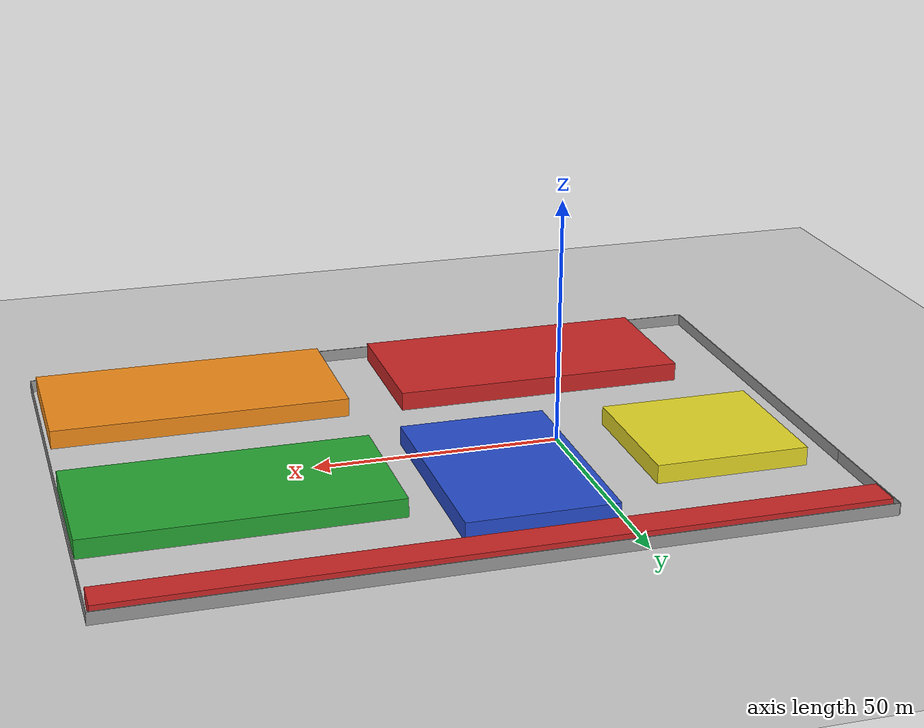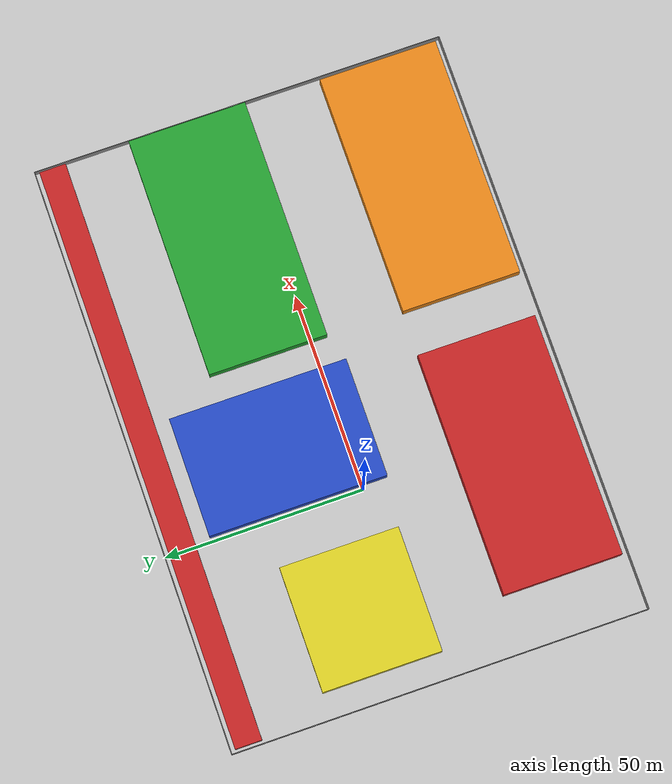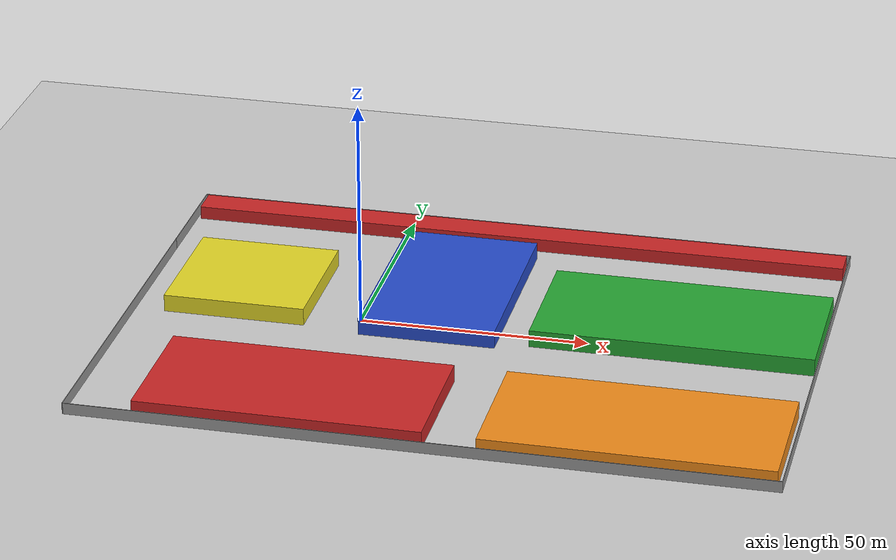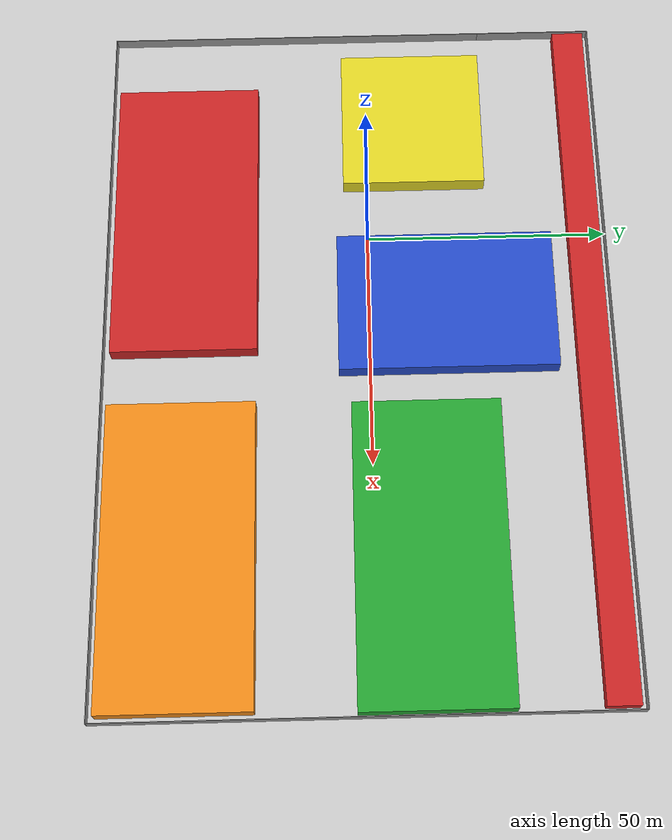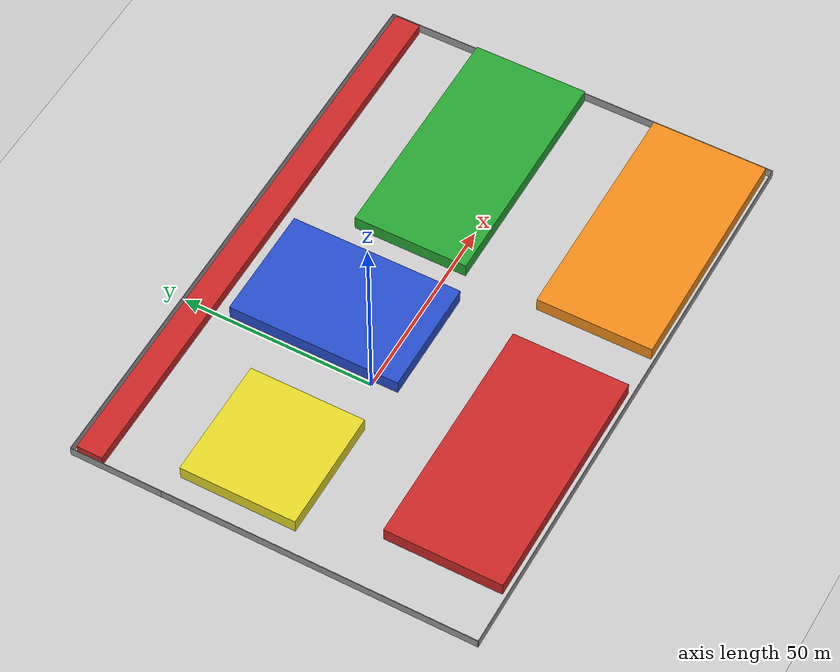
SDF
<sdf version="1.7">
 <world name="default">
  <light name="sun" type="directional">
   <pose>0 0 10 0 -0 0</pose>
   <diffuse>0.8 0.8 0.8 1</diffuse>
   <specular>0.2 0.2 0.2 1</specular>
   <attenuation>
    <range>1000</range>
    <constant>0.9</constant>
    <linear>0.01</linear>
    <quadratic>0.001</quadratic>
   </attenuation>
   <direction>-0.5 0.1 -0.9</direction>
   <spot><inner_angle>0</inner_angle><outer_angle>0</outer_angle><falloff>0</falloff></spot>
  </light>
  <model name="ground_plane">
   <static>1</static>
   <link name="link">
    <collision name="collision">
     <geometry><plane><normal>0 0 1</normal><size>100 100</size></plane></geometry>
     <surface><friction><ode><mu>100</mu><mu2>50</mu2></ode></friction></surface>
    </collision>
    <visual name="visual">
     <cast_shadows>0</cast_shadows>
     <geometry><plane><normal>0 0 1</normal><size>100 100</size></plane></geometry>
     <material>
      <script><uri>file://media/materials/scripts/gazebo.material</uri><name>Gazebo/Grey</name></script>
     </material>
    </visual>
   </link>
  </model>
  <gravity>0 0 -9.8</gravity>
  <magnetic_field>6e-06 2.3e-05 -4.2e-05</magnetic_field>
  <atmosphere type="adiabatic"/>
  <physics type="ode">
   <max_step_size>0.001</max_step_size>
   <real_time_factor>1</real_time_factor>
   <real_time_update_rate>1000</real_time_update_rate>
  </physics>
  <scene><ambient>0.4 0.4 0.4 1</ambient><background>0.7 0.7 0.7 1</background><shadows>1</shadows></scene>
  <audio><device>default</device></audio>
  <spherical_coordinates>
   <surface_model>EARTH_WGS84</surface_model>
   <latitude_deg>0</latitude_deg>
   <longitude_deg>0</longitude_deg>
   <elevation>0</elevation>
   <heading_deg>0</heading_deg>
  </spherical_coordinates>
  <model name="new_box">
   <pose>25.1143 -2.2458 0 0 -0 0</pose>
   <link name="Wall_10">
    <collision name="Wall_10_Collision">
     <geometry><box><size>104.5 0.15 2.5</size></box></geometry>
     <pose>0 0 1.25 0 -0 0</pose>
    </collision>
    <visual name="Wall_10_Visual">
     <pose>0 0 1.25 0 -0 0</pose>
     <geometry><box><size>104.5 0.15 2.5</size></box></geometry>
     <material>
      <script><uri>file://media/materials/scripts/gazebo.material</uri><name>Gazebo/Grey</name></script>
      <ambient>1 1 1 1</ambient>
     </material>
     <meta><layer>0</layer></meta>
    </visual>
    <pose>74.425 -1e-06 0 0 -0 -1.5708</pose>
   </link>
   <link name="Wall_11">
    <collision name="Wall_11_Collision">
     <geometry><box><size>149 0.15 2.5</size></box></geometry>
     <pose>0 0 1.25 0 -0 0</pose>
    </collision>
    <visual name="Wall_11_Visual">
     <pose>0 0 1.25 0 -0 0</pose>
     <geometry><box><size>149 0.15 2.5</size></box></geometry>
     <material>
      <script><uri>file://media/materials/scripts/gazebo.material</uri><name>Gazebo/Grey</name></script>
      <ambient>1 1 1 1</ambient>
     </material>
     <meta><layer>0</layer></meta>
    </visual>
    <pose>2e-06 -52.175 0 0 -0 3.14159</pose>
   </link>
   <link name="Wall_12">
    <collision name="Wall_12_Collision">
     <geometry><box><size>80.5 0.15 2.5</size></box></geometry>
     <pose>0 0 1.25 0 -0 0</pose>
    </collision>
    <visual name="Wall_12_Visual">
     <pose>0 0 1.25 0 -0 0</pose>
     <geometry><box><size>80.5 0.15 2.5</size></box></geometry>
     <material>
      <script><uri>file://media/materials/scripts/gazebo.material</uri><name>Gazebo/Grey</name></script>
      <ambient>1 1 1 1</ambient>
     </material>
     <meta><layer>0</layer></meta>
    </visual>
    <pose>-74.425 -12 0 0 -0 1.5708</pose>
   </link>
   <link name="Wall_8">
    <collision name="Wall_8_Collision">
     <geometry><box><size>24.5 0.15 2.5</size></box></geometry>
     <pose>0 0 1.25 0 -0 0</pose>
    </collision>
    <visual name="Wall_8_Visual">
     <pose>0 0 1.25 0 -0 0</pose>
     <geometry><box><size>24.5 0.15 2.5</size></box></geometry>
     <material>
      <script><uri>file://media/materials/scripts/gazebo.material</uri><name>Gazebo/Grey</name></script>
      <ambient>1 1 1 1</ambient>
     </material>
     <meta><layer>0</layer></meta>
    </visual>
    <pose>-74.425 40 0 0 -0 1.5708</pose>
   </link>
   <link name="Wall_9">
    <collision name="Wall_9_Collision">
     <geometry><box><size>149 0.15 2.5</size></box></geometry>
     <pose>0 0 1.25 0 -0 0</pose>
    </collision>
    <visual name="Wall_9_Visual">
     <pose>0 0 1.25 0 -0 0</pose>
     <geometry><box><size>149 0.15 2.5</size></box></geometry>
     <material>
      <script><uri>file://media/materials/scripts/gazebo.material</uri><name>Gazebo/Grey</name></script>
      <ambient>1 1 1 1</ambient>
     </material>
     <meta><layer>0</layer></meta>
    </visual>
    <pose>2e-06 52.175 0 0 -0 0</pose>
   </link>
   <static>1</static>
  </model>
  <model name="block2">
   <link name="link_2">
    <inertial>
     <mass>6982.38</mass>
     <inertia>
      <ixx>528573</ixx>
      <ixy>0</ixy>
      <ixz>0</ixz>
      <iyy>2.17899e+06</iyy>
      <iyz>0</iyz>
      <izz>2.69054e+06</izz>
     </inertia>
    </inertial>
    <visual name="visual">
     <geometry><box><size>61.0754 29.8963 3.82403</size></box></geometry>
     <material>
      <lighting>1</lighting>
      <script><uri>file://media/materials/scripts/gazebo.material</uri><name>Gazebo/Green</name></script>
      <shader type="pixel"><normal_map>__default__</normal_map></shader>
      <ambient>0 1 0 1</ambient>
      <diffuse>0 1 0 1</diffuse>
      <specular>0.1 0.1 0.1 1</specular>
      <emissive>0 0 0 1</emissive>
     </material>
    </visual>
    <collision name="collision">
     <geometry><box><size>61.0754 29.8963 3.82403</size></box></geometry>
     <surface>
      <friction>
       <ode><mu>1</mu><mu2>1</mu2><fdir1>0 0 0</fdir1><slip1>0</slip1><slip2>0</slip2></ode>
       <torsional>
        <coefficient>1</coefficient>
        <patch_radius>0</patch_radius>
        <surface_radius>0</surface_radius>
        <use_patch_radius>1</use_patch_radius>
        <ode><slip>0</slip></ode>
       </torsional>
      </friction>
      <bounce><restitution_coefficient>0</restitution_coefficient><threshold>1e+06</threshold></bounce>
      <contact>
       <collide_without_contact>0</collide_without_contact>
       <collide_without_contact_bitmask>1</collide_without_contact_bitmask>
       <collide_bitmask>1</collide_bitmask>
       <ode>
        <soft_cfm>0</soft_cfm>
        <soft_erp>0.2</soft_erp>
        <kp>1e+13</kp>
        <kd>1</kd>
        <max_vel>0.01</max_vel>
        <min_depth>0</min_depth>
       </ode>
       <bullet>
        <split_impulse>1</split_impulse>
        <split_impulse_penetration_threshold>-0.01</split_impulse_penetration_threshold>
        <soft_cfm>0</soft_cfm>
        <soft_erp>0.2</soft_erp>
        <kp>1e+13</kp>
        <kd>1</kd>
       </bullet>
      </contact>
     </surface>
    </collision>
   </link>
   <static>0</static>
   <pose>68.4662 10.9026 1.91202 0 -0 0</pose>
  </model>
  <model name="block2_0">
   <link name="link_0">
    <inertial>
     <mass>2902.28</mass>
     <inertia>
      <ixx>12891.6</ixx>
      <ixy>0</ixy>
      <ixz>0</ixz>
      <iyy>5.25698e+06</iyy>
      <iyz>0</iyz>
      <izz>5.26567e+06</izz>
     </inertia>
    </inertial>
    <pose>-3.1e-05 -3.1e-05 2e-06 0 -0 0</pose>
    <visual name="visual">
     <geometry><box><size>147.402 6.67865 2.9493</size></box></geometry>
     <material>
      <lighting>1</lighting>
      <script><uri>file://media/materials/scripts/gazebo.material</uri><name>Gazebo/Red</name></script>
      <shader type="pixel"><normal_map>__default__</normal_map></shader>
      <ambient>1 0 0 1</ambient>
      <diffuse>1 0 0 1</diffuse>
      <specular>0.1 0.1 0.1 1</specular>
      <emissive>0 0 0 1</emissive>
     </material>
    </visual>
    <collision name="collision">
     <geometry><box><size>147.402 6.67865 2.9493</size></box></geometry>
     <surface>
      <friction>
       <ode><mu>1</mu><mu2>1</mu2><fdir1>0 0 0</fdir1><slip1>0</slip1><slip2>0</slip2></ode>
       <torsional>
        <coefficient>1</coefficient>
        <patch_radius>0</patch_radius>
        <surface_radius>0</surface_radius>
        <use_patch_radius>1</use_patch_radius>
        <ode><slip>0</slip></ode>
       </torsional>
      </friction>
      <bounce><restitution_coefficient>0</restitution_coefficient><threshold>1e+06</threshold></bounce>
      <contact>
       <collide_without_contact>0</collide_without_contact>
       <collide_without_contact_bitmask>1</collide_without_contact_bitmask>
       <collide_bitmask>1</collide_bitmask>
       <ode>
        <soft_cfm>0</soft_cfm>
        <soft_erp>0.2</soft_erp>
        <kp>1e+13</kp>
        <kd>1</kd>
        <max_vel>0.01</max_vel>
        <min_depth>0</min_depth>
       </ode>
       <bullet>
        <split_impulse>1</split_impulse>
        <split_impulse_penetration_threshold>-0.01</split_impulse_penetration_threshold>
        <soft_cfm>0</soft_cfm>
        <soft_erp>0.2</soft_erp>
        <kp>1e+13</kp>
        <kd>1</kd>
       </bullet>
      </contact>
     </surface>
    </collision>
   </link>
   <static>0</static>
   <pose>25.2185 45.427 1.47465 0 -0 0</pose>
  </model>
  <model name="block3">
   <link name="link_2">
    <inertial>
     <mass>6982.38</mass>
     <inertia>
      <ixx>528573</ixx>
      <ixy>0</ixy>
      <ixz>0</ixz>
      <iyy>2.17899e+06</iyy>
      <iyz>0</iyz>
      <izz>2.69054e+06</izz>
     </inertia>
    </inertial>
    <pose>2e-06 -0 0 0 -0 0</pose>
    <visual name="visual">
     <geometry><box><size>44.766 29.8964 3.82403</size></box></geometry>
     <material>
      <lighting>1</lighting>
      <script><uri>file://media/materials/scripts/gazebo.material</uri><name>Gazebo/Blue</name></script>
      <shader type="pixel"><normal_map>__default__</normal_map></shader>
      <ambient>0 0 1 1</ambient>
      <diffuse>0 0 1 1</diffuse>
      <specular>0.1 0.1 0.1 1</specular>
      <emissive>0 0 0 1</emissive>
     </material>
    </visual>
    <collision name="collision">
     <geometry><box><size>44.766 29.8964 3.82403</size></box></geometry>
     <surface>
      <friction>
       <ode><mu>1</mu><mu2>1</mu2><fdir1>0 0 0</fdir1><slip1>0</slip1><slip2>0</slip2></ode>
       <torsional>
        <coefficient>1</coefficient>
        <patch_radius>0</patch_radius>
        <surface_radius>0</surface_radius>
        <use_patch_radius>1</use_patch_radius>
        <ode><slip>0</slip></ode>
       </torsional>
      </friction>
      <bounce><restitution_coefficient>0</restitution_coefficient><threshold>1e+06</threshold></bounce>
      <contact>
       <collide_without_contact>0</collide_without_contact>
       <collide_without_contact_bitmask>1</collide_without_contact_bitmask>
       <collide_bitmask>1</collide_bitmask>
       <ode>
        <soft_cfm>0</soft_cfm>
        <soft_erp>0.2</soft_erp>
        <kp>1e+13</kp>
        <kd>1</kd>
        <max_vel>0.01</max_vel>
        <min_depth>0</min_depth>
       </ode>
       <bullet>
        <split_impulse>1</split_impulse>
        <split_impulse_penetration_threshold>-0.01</split_impulse_penetration_threshold>
        <soft_cfm>0</soft_cfm>
        <soft_erp>0.2</soft_erp>
        <kp>1e+13</kp>
        <kd>1</kd>
       </bullet>
      </contact>
     </surface>
    </collision>
   </link>
   <static>0</static>
   <pose>15.9413 15.9619 1.91202 0 -0 1.57083</pose>
  </model>
  <model name="block4">
   <link name="link_2">
    <inertial>
     <mass>6982.38</mass>
     <inertia>
      <ixx>528573</ixx>
      <ixy>0</ixy>
      <ixz>0</ixz>
      <iyy>2.17899e+06</iyy>
      <iyz>0</iyz>
      <izz>2.69054e+06</izz>
     </inertia>
    </inertial>
    <visual name="visual">
     <geometry><box><size>61.0754 29.8963 3.82403</size></box></geometry>
     <material>
      <lighting>1</lighting>
      <script><uri>file://media/materials/scripts/gazebo.material</uri><name>Gazebo/Orange</name></script>
      <shader type="pixel"><normal_map>__default__</normal_map></shader>
      <ambient>1 0.509 0.047 1</ambient>
      <diffuse>1 0.509 0.047 1</diffuse>
      <specular>0.5 0.5 0.5 1</specular>
      <emissive>0 0 0 1</emissive>
     </material>
    </visual>
    <collision name="collision">
     <geometry><box><size>61.0754 29.8963 3.82403</size></box></geometry>
     <surface>
      <friction>
       <ode><mu>1</mu><mu2>1</mu2><fdir1>0 0 0</fdir1><slip1>0</slip1><slip2>0</slip2></ode>
       <torsional>
        <coefficient>1</coefficient>
        <patch_radius>0</patch_radius>
        <surface_radius>0</surface_radius>
        <use_patch_radius>1</use_patch_radius>
        <ode><slip>0</slip></ode>
       </torsional>
      </friction>
      <bounce><restitution_coefficient>0</restitution_coefficient><threshold>1e+06</threshold></bounce>
      <contact>
       <collide_without_contact>0</collide_without_contact>
       <collide_without_contact_bitmask>1</collide_without_contact_bitmask>
       <collide_bitmask>1</collide_bitmask>
       <ode>
        <soft_cfm>0</soft_cfm>
        <soft_erp>0.2</soft_erp>
        <kp>1e+13</kp>
        <kd>1</kd>
        <max_vel>0.01</max_vel>
        <min_depth>0</min_depth>
       </ode>
       <bullet>
        <split_impulse>1</split_impulse>
        <split_impulse_penetration_threshold>-0.01</split_impulse_penetration_threshold>
        <soft_cfm>0</soft_cfm>
        <soft_erp>0.2</soft_erp>
        <kp>1e+13</kp>
        <kd>1</kd>
       </bullet>
      </contact>
     </surface>
    </collision>
   </link>
   <static>0</static>
   <pose>67.866 -38.104 1.91202 0 0 -8e-06</pose>
  </model>
  <model name="block5">
   <link name="link_2">
    <inertial>
     <mass>6982.38</mass>
     <inertia>
      <ixx>528573</ixx>
      <ixy>0</ixy>
      <ixz>0</ixz>
      <iyy>2.17899e+06</iyy>
      <iyz>0</iyz>
      <izz>2.69054e+06</izz>
     </inertia>
    </inertial>
    <pose>4e-06 0 -0 0 -0 0</pose>
    <visual name="visual">
     <geometry><box><size>31.2532 29.8963 3.82403</size></box></geometry>
     <material>
      <lighting>1</lighting>
      <script><uri>file://media/materials/scripts/gazebo.material</uri><name>Gazebo/Yellow</name></script>
      <shader type="pixel"><normal_map>__default__</normal_map></shader>
      <ambient>1 1 0 1</ambient>
      <diffuse>1 1 0 1</diffuse>
      <emissive>0 0 0 1</emissive>
     </material>
    </visual>
    <collision name="collision">
     <geometry><box><size>31.2532 29.8963 3.82403</size></box></geometry>
     <surface>
      <friction>
       <ode><mu>1</mu><mu2>1</mu2><fdir1>0 0 0</fdir1><slip1>0</slip1><slip2>0</slip2></ode>
       <torsional>
        <coefficient>1</coefficient>
        <patch_radius>0</patch_radius>
        <surface_radius>0</surface_radius>
        <use_patch_radius>1</use_patch_radius>
        <ode><slip>0</slip></ode>
       </torsional>
      </friction>
      <bounce><restitution_coefficient>0</restitution_coefficient><threshold>1e+06</threshold></bounce>
      <contact>
       <collide_without_contact>0</collide_without_contact>
       <collide_without_contact_bitmask>1</collide_without_contact_bitmask>
       <collide_bitmask>1</collide_bitmask>
       <ode>
        <soft_cfm>0</soft_cfm>
        <soft_erp>0.2</soft_erp>
        <kp>1e+13</kp>
        <kd>1</kd>
        <max_vel>0.01</max_vel>
        <min_depth>0</min_depth>
       </ode>
       <bullet>
        <split_impulse>1</split_impulse>
        <split_impulse_penetration_threshold>-0.01</split_impulse_penetration_threshold>
        <soft_cfm>0</soft_cfm>
        <soft_erp>0.2</soft_erp>
        <kp>1e+13</kp>
        <kd>1</kd>
       </bullet>
      </contact>
     </surface>
    </collision>
   </link>
   <static>0</static>
   <pose>-27.127 10.1198 1.91202 0 0 -8e-06</pose>
  </model>
  <model name="block2_clone">
   <link name="link_2">
    <inertial>
     <mass>6982.38</mass>
     <inertia>
      <ixx>528573</ixx>
      <ixy>0</ixy>
      <ixz>0</ixz>
      <iyy>2.17899e+06</iyy>
      <iyz>0</iyz>
      <izz>2.69054e+06</izz>
     </inertia>
    </inertial>
    <visual name="visual">
     <geometry><box><size>61.0754 29.8963 3.82403</size></box></geometry>
     <material>
      <lighting>1</lighting>
      <script><uri>file://media/materials/scripts/gazebo.material</uri><name>Gazebo/Red</name></script>
      <shader type="pixel"><normal_map>__default__</normal_map></shader>
      <ambient>0 1 0 1</ambient>
      <diffuse>0 1 0 1</diffuse>
      <specular>0.1 0.1 0.1 1</specular>
      <emissive>0 0 0 1</emissive>
     </material>
    </visual>
    <collision name="collision">
     <geometry><box><size>61.0754 29.8963 3.82403</size></box></geometry>
     <surface>
      <friction>
       <ode><mu>1</mu><mu2>1</mu2><fdir1>0 0 0</fdir1><slip1>0</slip1><slip2>0</slip2></ode>
       <torsional>
        <coefficient>1</coefficient>
        <patch_radius>0</patch_radius>
        <surface_radius>0</surface_radius>
        <use_patch_radius>1</use_patch_radius>
        <ode><slip>0</slip></ode>
       </torsional>
      </friction>
      <bounce><restitution_coefficient>0</restitution_coefficient><threshold>1e+06</threshold></bounce>
      <contact>
       <collide_without_contact>0</collide_without_contact>
       <collide_without_contact_bitmask>1</collide_without_contact_bitmask>
       <collide_bitmask>1</collide_bitmask>
       <ode>
        <soft_cfm>0</soft_cfm>
        <soft_erp>0.2</soft_erp>
        <kp>1e+13</kp>
        <kd>1</kd>
        <max_vel>0.01</max_vel>
        <min_depth>0</min_depth>
       </ode>
       <bullet>
        <split_impulse>1</split_impulse>
        <split_impulse_penetration_threshold>-0.01</split_impulse_penetration_threshold>
        <soft_cfm>0</soft_cfm>
        <soft_erp>0.2</soft_erp>
        <kp>1e+13</kp>
        <kd>1</kd>
       </bullet>
      </contact>
     </surface>
    </collision>
   </link>
   <static>0</static>
   <pose>-4.53243 -37.8752 1.91202 0 -0 0</pose>
  </model>
 </world>
</sdf>
